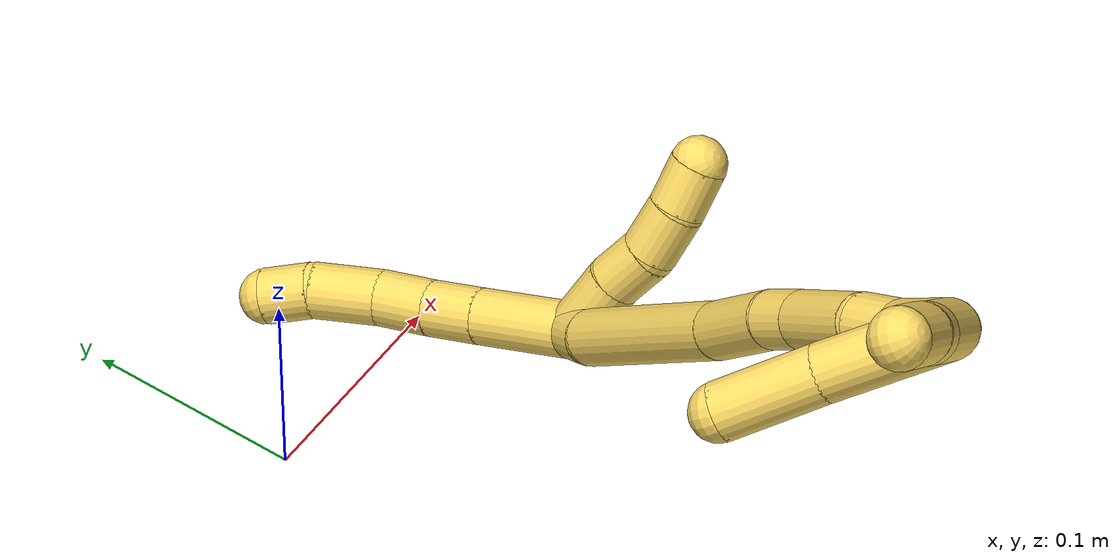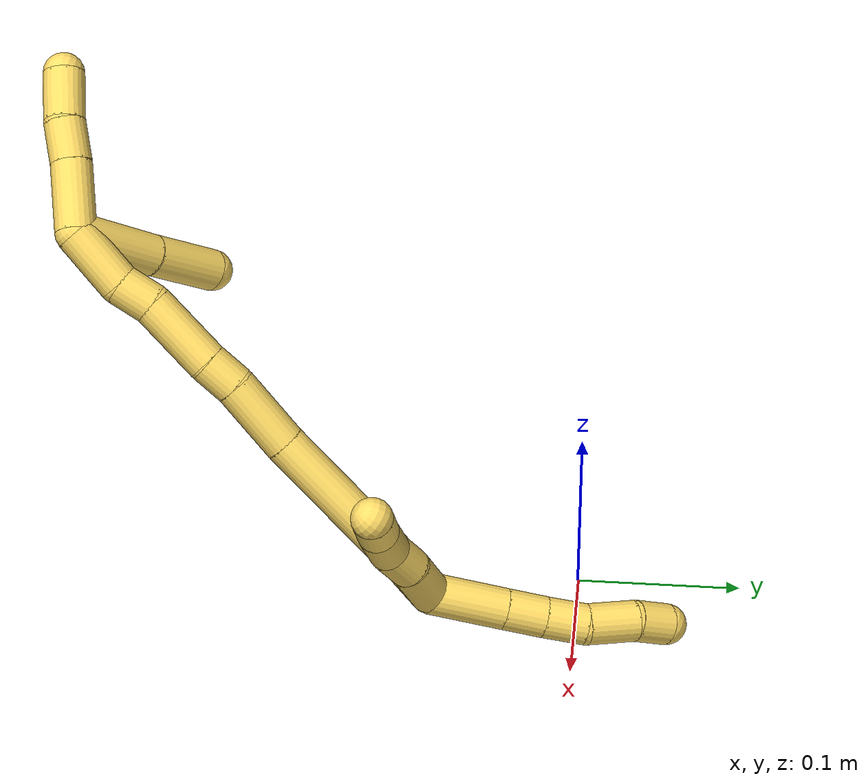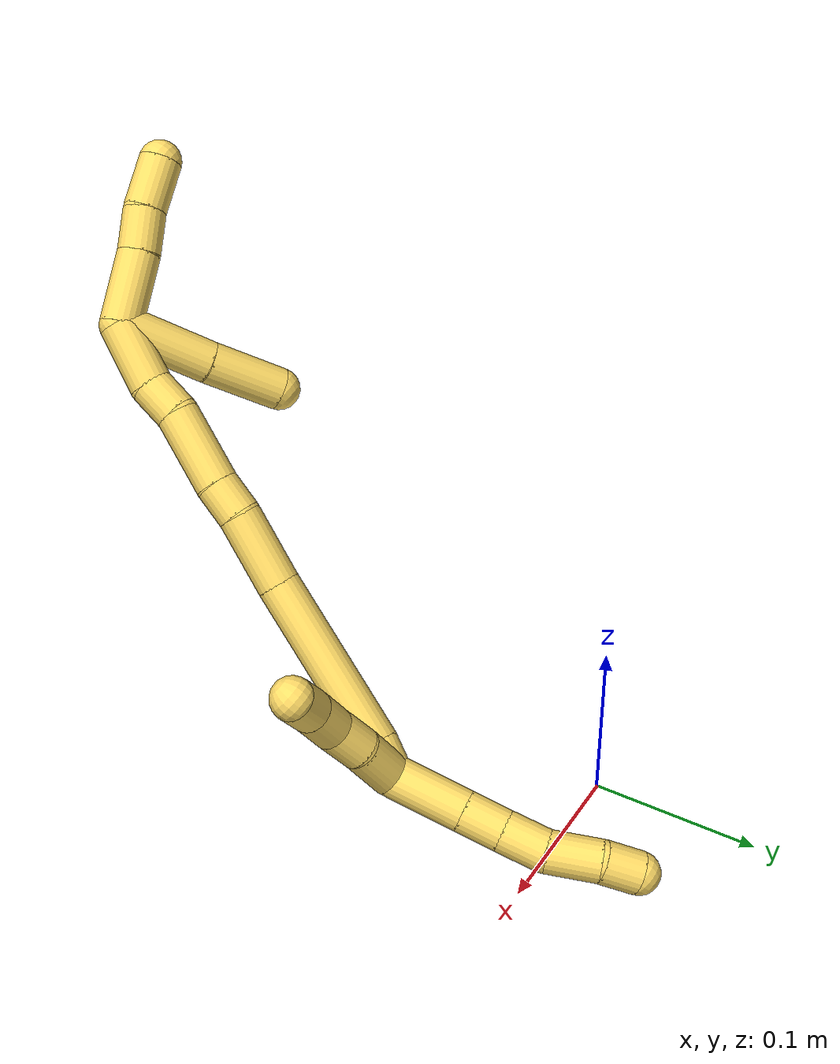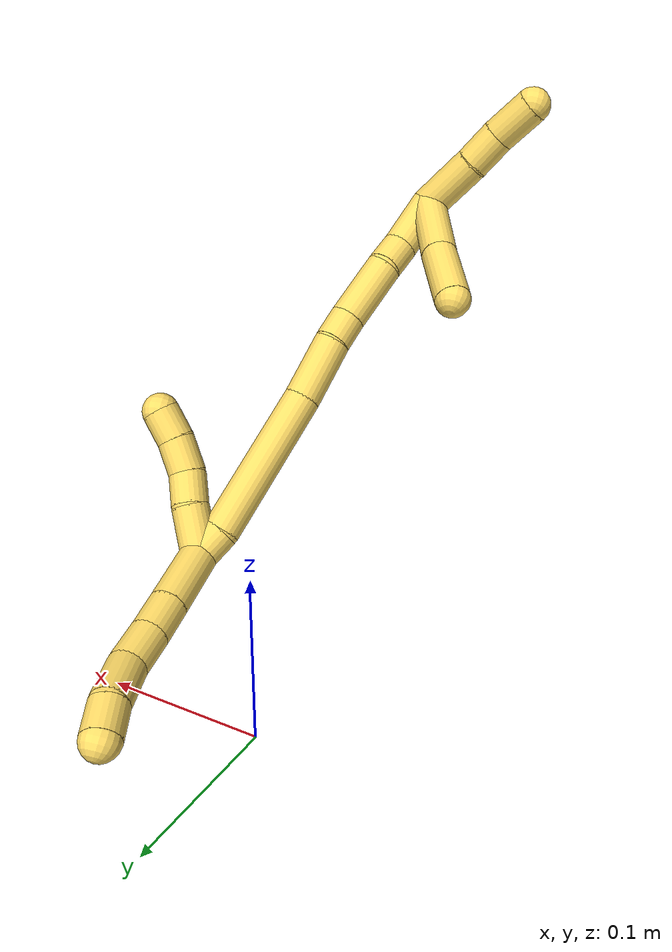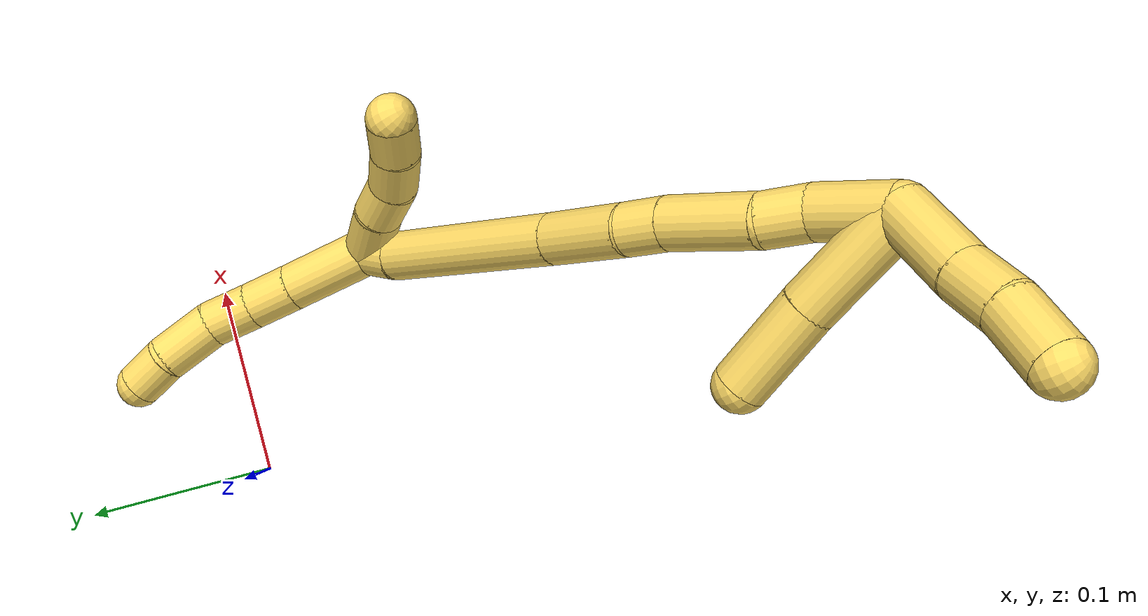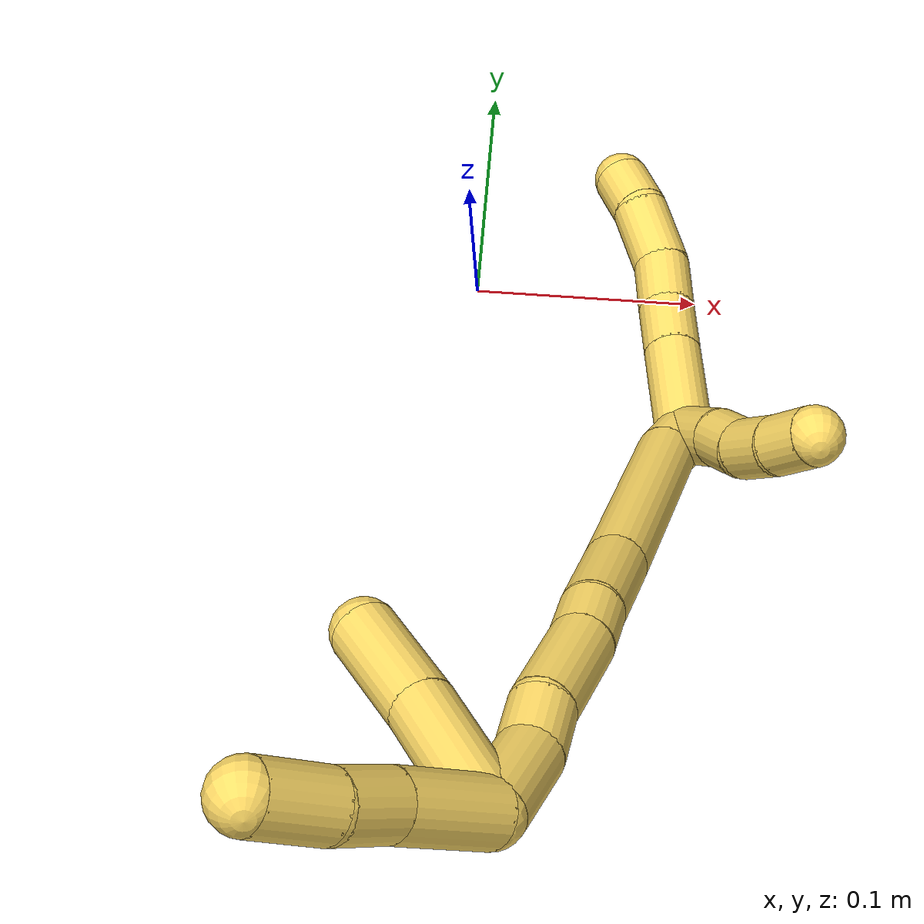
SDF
<sdf version="1.7">
 <world name="default">
  <model name="5">
   <static>0</static>
   <link name="5">
    <collision name="collision-cylinder-e_1_2_8">
     <pose>-0.008935 0.001822 -0.021013 -3.0551 -0.40069 2.72169</pose>
     <geometry><cylinder><radius>0.0125</radius><length>0.045813</length></cylinder></geometry>
     <surface>
      <friction><ode><mu>1.16</mu><mu2>1.16</mu2><slip1>0</slip1><slip2>0</slip2></ode></friction>
      <contact><ode><kp>1e+06</kp><kd>1</kd><max_vel>0</max_vel><min_depth>0.001</min_depth></ode></contact>
     </surface>
    </collision>
    <visual name="visual-cylinder-e_1_2_8">
     <pose>-0.008935 0.001822 -0.021013 -3.0551 -0.40069 2.72169</pose>
     <geometry><cylinder><radius>0.0125</radius><length>0.045813</length></cylinder></geometry>
     <material><ambient>1 0.858824 0.4 1</ambient></material>
    </visual>
    <collision name="collision-cylinder-e_2_8_9">
     <pose>-0.022792 0.004714 -0.053364 -3.04746 -0.407995 2.69385</pose>
     <geometry><cylinder><radius>0.0125</radius><length>0.024813</length></cylinder></geometry>
     <surface>
      <friction><ode><mu>1.16</mu><mu2>1.16</mu2><slip1>0</slip1><slip2>0</slip2></ode></friction>
      <contact><ode><kp>1e+06</kp><kd>1</kd><max_vel>0</max_vel><min_depth>0.001</min_depth></ode></contact>
     </surface>
    </collision>
    <visual name="visual-cylinder-e_2_8_9">
     <pose>-0.022792 0.004714 -0.053364 -3.04746 -0.407995 2.69385</pose>
     <geometry><cylinder><radius>0.0125</radius><length>0.024813</length></cylinder></geometry>
     <material><ambient>1 0.858824 0.4 1</ambient></material>
    </visual>
    <collision name="collision-cylinder-e_3_9_10">
     <pose>-0.033276 0.007093 -0.076266 -3.02897 -0.445794 2.65408</pose>
     <geometry><cylinder><radius>0.0125</radius><length>0.025797</length></cylinder></geometry>
     <surface>
      <friction><ode><mu>1.16</mu><mu2>1.16</mu2><slip1>0</slip1><slip2>0</slip2></ode></friction>
      <contact><ode><kp>1e+06</kp><kd>1</kd><max_vel>0</max_vel><min_depth>0.001</min_depth></ode></contact>
     </surface>
    </collision>
    <visual name="visual-cylinder-e_3_9_10">
     <pose>-0.033276 0.007093 -0.076266 -3.02897 -0.445794 2.65408</pose>
     <geometry><cylinder><radius>0.0125</radius><length>0.025797</length></cylinder></geometry>
     <material><ambient>1 0.858824 0.4 1</ambient></material>
    </visual>
    <collision name="collision-cylinder-e_4_10_11">
     <pose>-0.047554 0.006474 -0.100657 2.99248 -0.591696 -2.66092</pose>
     <geometry><cylinder><radius>0.0125</radius><length>0.031254</length></cylinder></geometry>
     <surface>
      <friction><ode><mu>1.16</mu><mu2>1.16</mu2><slip1>0</slip1><slip2>0</slip2></ode></friction>
      <contact><ode><kp>1e+06</kp><kd>1</kd><max_vel>0</max_vel><min_depth>0.001</min_depth></ode></contact>
     </surface>
    </collision>
    <visual name="visual-cylinder-e_4_10_11">
     <pose>-0.047554 0.006474 -0.100657 2.99248 -0.591696 -2.66092</pose>
     <geometry><cylinder><radius>0.0125</radius><length>0.031254</length></cylinder></geometry>
     <material><ambient>1 0.858824 0.4 1</ambient></material>
    </visual>
    <collision name="collision-cylinder-e_5_11_6">
     <pose>-0.059989 0.0022 -0.123742 2.91667 -0.339714 -1.97694</pose>
     <geometry><cylinder><radius>0.0125</radius><length>0.022323</length></cylinder></geometry>
     <surface>
      <friction><ode><mu>1.16</mu><mu2>1.16</mu2><slip1>0</slip1><slip2>0</slip2></ode></friction>
      <contact><ode><kp>1e+06</kp><kd>1</kd><max_vel>0</max_vel><min_depth>0.001</min_depth></ode></contact>
     </surface>
    </collision>
    <visual name="visual-cylinder-e_5_11_6">
     <pose>-0.059989 0.0022 -0.123742 2.91667 -0.339714 -1.97694</pose>
     <geometry><cylinder><radius>0.0125</radius><length>0.022323</length></cylinder></geometry>
     <material><ambient>1 0.858824 0.4 1</ambient></material>
    </visual>
    <collision name="collision-cylinder-e_1_2_12">
     <pose>-0.005388 0.006122 0.013663 -0.421243 -0.345435 0.07456</pose>
     <geometry><cylinder><radius>0.0125</radius><length>0.031823</length></cylinder></geometry>
     <surface>
      <friction><ode><mu>1.16</mu><mu2>1.16</mu2><slip1>0</slip1><slip2>0</slip2></ode></friction>
      <contact><ode><kp>1e+06</kp><kd>1</kd><max_vel>0</max_vel><min_depth>0.001</min_depth></ode></contact>
     </surface>
    </collision>
    <visual name="visual-cylinder-e_1_2_12">
     <pose>-0.005388 0.006122 0.013663 -0.421243 -0.345435 0.07456</pose>
     <geometry><cylinder><radius>0.0125</radius><length>0.031823</length></cylinder></geometry>
     <material><ambient>1 0.858824 0.4 1</ambient></material>
    </visual>
    <collision name="collision-cylinder-e_2_12_13">
     <pose>-0.013043 0.015798 0.037687 -0.330446 -0.204128 0.034152</pose>
     <geometry><cylinder><radius>0.0125</radius><length>0.022373</length></cylinder></geometry>
     <surface>
      <friction><ode><mu>1.16</mu><mu2>1.16</mu2><slip1>0</slip1><slip2>0</slip2></ode></friction>
      <contact><ode><kp>1e+06</kp><kd>1</kd><max_vel>0</max_vel><min_depth>0.001</min_depth></ode></contact>
     </surface>
    </collision>
    <visual name="visual-cylinder-e_2_12_13">
     <pose>-0.013043 0.015798 0.037687 -0.330446 -0.204128 0.034152</pose>
     <geometry><cylinder><radius>0.0125</radius><length>0.022373</length></cylinder></geometry>
     <material><ambient>1 0.858824 0.4 1</ambient></material>
    </visual>
    <collision name="collision-cylinder-e_3_13_14">
     <pose>-0.020132 0.025098 0.057405 -0.55074 -0.413723 0.118455</pose>
     <geometry><cylinder><radius>0.0125</radius><length>0.023984</length></cylinder></geometry>
     <surface>
      <friction><ode><mu>1.16</mu><mu2>1.16</mu2><slip1>0</slip1><slip2>0</slip2></ode></friction>
      <contact><ode><kp>1e+06</kp><kd>1</kd><max_vel>0</max_vel><min_depth>0.001</min_depth></ode></contact>
     </surface>
    </collision>
    <visual name="visual-cylinder-e_3_13_14">
     <pose>-0.020132 0.025098 0.057405 -0.55074 -0.413723 0.118455</pose>
     <geometry><cylinder><radius>0.0125</radius><length>0.023984</length></cylinder></geometry>
     <material><ambient>1 0.858824 0.4 1</ambient></material>
    </visual>
    <collision name="collision-cylinder-e_4_14_5">
     <pose>-0.029768 0.037284 0.074136 -0.717866 -0.457115 0.174112</pose>
     <geometry><cylinder><radius>0.0125</radius><length>0.02182</length></cylinder></geometry>
     <surface>
      <friction><ode><mu>1.16</mu><mu2>1.16</mu2><slip1>0</slip1><slip2>0</slip2></ode></friction>
      <contact><ode><kp>1e+06</kp><kd>1</kd><max_vel>0</max_vel><min_depth>0.001</min_depth></ode></contact>
     </surface>
    </collision>
    <visual name="visual-cylinder-e_4_14_5">
     <pose>-0.029768 0.037284 0.074136 -0.717866 -0.457115 0.174112</pose>
     <geometry><cylinder><radius>0.0125</radius><length>0.02182</length></cylinder></geometry>
     <material><ambient>1 0.858824 0.4 1</ambient></material>
    </visual>
    <collision name="collision-cylinder-e_1_2_15">
     <pose>-0.001089 -0.00514 0.008529 0.542363 -0.108935 -0.030315</pose>
     <geometry><cylinder><radius>0.0125</radius><length>0.020035</length></cylinder></geometry>
     <surface>
      <friction><ode><mu>1.16</mu><mu2>1.16</mu2><slip1>0</slip1><slip2>0</slip2></ode></friction>
      <contact><ode><kp>1e+06</kp><kd>1</kd><max_vel>0</max_vel><min_depth>0.001</min_depth></ode></contact>
     </surface>
    </collision>
    <visual name="visual-cylinder-e_1_2_15">
     <pose>-0.001089 -0.00514 0.008529 0.542363 -0.108935 -0.030315</pose>
     <geometry><cylinder><radius>0.0125</radius><length>0.020035</length></cylinder></geometry>
     <material><ambient>1 0.858824 0.4 1</ambient></material>
    </visual>
    <collision name="collision-cylinder-e_2_15_16">
     <pose>-0.008703 -0.026763 0.066465 0.322005 -0.124631 -0.020267</pose>
     <geometry><cylinder><radius>0.0125</radius><length>0.104983</length></cylinder></geometry>
     <surface>
      <friction><ode><mu>1.16</mu><mu2>1.16</mu2><slip1>0</slip1><slip2>0</slip2></ode></friction>
      <contact><ode><kp>1e+06</kp><kd>1</kd><max_vel>0</max_vel><min_depth>0.001</min_depth></ode></contact>
     </surface>
    </collision>
    <visual name="visual-cylinder-e_2_15_16">
     <pose>-0.008703 -0.026763 0.066465 0.322005 -0.124631 -0.020267</pose>
     <geometry><cylinder><radius>0.0125</radius><length>0.104983</length></cylinder></geometry>
     <material><ambient>1 0.858824 0.4 1</ambient></material>
    </visual>
    <collision name="collision-cylinder-e_3_16_17">
     <pose>-0.019731 -0.049637 0.137038 0.293241 -0.200898 -0.029767</pose>
     <geometry><cylinder><radius>0.0125</radius><length>0.045126</length></cylinder></geometry>
     <surface>
      <friction><ode><mu>1.16</mu><mu2>1.16</mu2><slip1>0</slip1><slip2>0</slip2></ode></friction>
      <contact><ode><kp>1e+06</kp><kd>1</kd><max_vel>0</max_vel><min_depth>0.001</min_depth></ode></contact>
     </surface>
    </collision>
    <visual name="visual-cylinder-e_3_16_17">
     <pose>-0.019731 -0.049637 0.137038 0.293241 -0.200898 -0.029767</pose>
     <geometry><cylinder><radius>0.0125</radius><length>0.045126</length></cylinder></geometry>
     <material><ambient>1 0.858824 0.4 1</ambient></material>
    </visual>
    <collision name="collision-cylinder-e_4_17_18">
     <pose>-0.02468 -0.059251 0.168442 0.304991 -0.041596 -0.006394</pose>
     <geometry><cylinder><radius>0.0125</radius><length>0.021488</length></cylinder></geometry>
     <surface>
      <friction><ode><mu>1.16</mu><mu2>1.16</mu2><slip1>0</slip1><slip2>0</slip2></ode></friction>
      <contact><ode><kp>1e+06</kp><kd>1</kd><max_vel>0</max_vel><min_depth>0.001</min_depth></ode></contact>
     </surface>
    </collision>
    <visual name="visual-cylinder-e_4_17_18">
     <pose>-0.02468 -0.059251 0.168442 0.304991 -0.041596 -0.006394</pose>
     <geometry><cylinder><radius>0.0125</radius><length>0.021488</length></cylinder></geometry>
     <material><ambient>1 0.858824 0.4 1</ambient></material>
    </visual>
    <collision name="collision-cylinder-e_5_18_19">
     <pose>-0.027988 -0.071317 0.200039 0.392528 -0.123154 -0.024516</pose>
     <geometry><cylinder><radius>0.0125</radius><length>0.046584</length></cylinder></geometry>
     <surface>
      <friction><ode><mu>1.16</mu><mu2>1.16</mu2><slip1>0</slip1><slip2>0</slip2></ode></friction>
      <contact><ode><kp>1e+06</kp><kd>1</kd><max_vel>0</max_vel><min_depth>0.001</min_depth></ode></contact>
     </surface>
    </collision>
    <visual name="visual-cylinder-e_5_18_19">
     <pose>-0.027988 -0.071317 0.200039 0.392528 -0.123154 -0.024516</pose>
     <geometry><cylinder><radius>0.0125</radius><length>0.046584</length></cylinder></geometry>
     <material><ambient>1 0.858824 0.4 1</ambient></material>
    </visual>
    <collision name="collision-cylinder-e_6_19_20">
     <pose>-0.029548 -0.083726 0.23208 0.322278 0.115074 0.018725</pose>
     <geometry><cylinder><radius>0.0125</radius><length>0.022675</length></cylinder></geometry>
     <surface>
      <friction><ode><mu>1.16</mu><mu2>1.16</mu2><slip1>0</slip1><slip2>0</slip2></ode></friction>
      <contact><ode><kp>1e+06</kp><kd>1</kd><max_vel>0</max_vel><min_depth>0.001</min_depth></ode></contact>
     </surface>
    </collision>
    <visual name="visual-cylinder-e_6_19_20">
     <pose>-0.029548 -0.083726 0.23208 0.322278 0.115074 0.018725</pose>
     <geometry><cylinder><radius>0.0125</radius><length>0.022675</length></cylinder></geometry>
     <material><ambient>1 0.858824 0.4 1</ambient></material>
    </visual>
    <collision name="collision-cylinder-e_7_20_1">
     <pose>-0.031656 -0.094728 0.260524 0.396399 -0.175298 -0.035293</pose>
     <geometry><cylinder><radius>0.0125</radius><length>0.039109</length></cylinder></geometry>
     <surface>
      <friction><ode><mu>1.16</mu><mu2>1.16</mu2><slip1>0</slip1><slip2>0</slip2></ode></friction>
      <contact><ode><kp>1e+06</kp><kd>1</kd><max_vel>0</max_vel><min_depth>0.001</min_depth></ode></contact>
     </surface>
    </collision>
    <visual name="visual-cylinder-e_7_20_1">
     <pose>-0.031656 -0.094728 0.260524 0.396399 -0.175298 -0.035293</pose>
     <geometry><cylinder><radius>0.0125</radius><length>0.039109</length></cylinder></geometry>
     <material><ambient>1 0.858824 0.4 1</ambient></material>
    </visual>
    <collision name="collision-cylinder-e_1_1_21">
     <pose>-0.047684 -0.116739 0.288068 0.979759 -0.623172 -0.340166</pose>
     <geometry><cylinder><radius>0.0125</radius><length>0.043238</length></cylinder></geometry>
     <surface>
      <friction><ode><mu>1.16</mu><mu2>1.16</mu2><slip1>0</slip1><slip2>0</slip2></ode></friction>
      <contact><ode><kp>1e+06</kp><kd>1</kd><max_vel>0</max_vel><min_depth>0.001</min_depth></ode></contact>
     </surface>
    </collision>
    <visual name="visual-cylinder-e_1_1_21">
     <pose>-0.047684 -0.116739 0.288068 0.979759 -0.623172 -0.340166</pose>
     <geometry><cylinder><radius>0.0125</radius><length>0.043238</length></cylinder></geometry>
     <material><ambient>1 0.858824 0.4 1</ambient></material>
    </visual>
    <collision name="collision-cylinder-e_2_21_22">
     <pose>-0.06744 -0.139425 0.304893 0.855627 -0.586699 -0.273746</pose>
     <geometry><cylinder><radius>0.0125</radius><length>0.025793</length></cylinder></geometry>
     <surface>
      <friction><ode><mu>1.16</mu><mu2>1.16</mu2><slip1>0</slip1><slip2>0</slip2></ode></friction>
      <contact><ode><kp>1e+06</kp><kd>1</kd><max_vel>0</max_vel><min_depth>0.001</min_depth></ode></contact>
     </surface>
    </collision>
    <visual name="visual-cylinder-e_2_21_22">
     <pose>-0.06744 -0.139425 0.304893 0.855627 -0.586699 -0.273746</pose>
     <geometry><cylinder><radius>0.0125</radius><length>0.025793</length></cylinder></geometry>
     <material><ambient>1 0.858824 0.4 1</ambient></material>
    </visual>
    <collision name="collision-cylinder-e_3_22_4">
     <pose>-0.083817 -0.158314 0.318119 1.05006 -0.639174 -0.378794</pose>
     <geometry><cylinder><radius>0.0125</radius><length>0.03097</length></cylinder></geometry>
     <surface>
      <friction><ode><mu>1.16</mu><mu2>1.16</mu2><slip1>0</slip1><slip2>0</slip2></ode></friction>
      <contact><ode><kp>1e+06</kp><kd>1</kd><max_vel>0</max_vel><min_depth>0.001</min_depth></ode></contact>
     </surface>
    </collision>
    <visual name="visual-cylinder-e_3_22_4">
     <pose>-0.083817 -0.158314 0.318119 1.05006 -0.639174 -0.378794</pose>
     <geometry><cylinder><radius>0.0125</radius><length>0.03097</length></cylinder></geometry>
     <material><ambient>1 0.858824 0.4 1</ambient></material>
    </visual>
    <collision name="collision-cylinder-e_1_1_23">
     <pose>-0.039551 -0.110936 0.252685 2.81143 -0.16422 -0.917643</pose>
     <geometry><cylinder><radius>0.0125</radius><length>0.054864</length></cylinder></geometry>
     <surface>
      <friction><ode><mu>1.16</mu><mu2>1.16</mu2><slip1>0</slip1><slip2>0</slip2></ode></friction>
      <contact><ode><kp>1e+06</kp><kd>1</kd><max_vel>0</max_vel><min_depth>0.001</min_depth></ode></contact>
     </surface>
    </collision>
    <visual name="visual-cylinder-e_1_1_23">
     <pose>-0.039551 -0.110936 0.252685 2.81143 -0.16422 -0.917643</pose>
     <geometry><cylinder><radius>0.0125</radius><length>0.054864</length></cylinder></geometry>
     <material><ambient>1 0.858824 0.4 1</ambient></material>
    </visual>
    <collision name="collision-cylinder-e_2_23_3">
     <pose>-0.047857 -0.128025 0.206454 2.7584 -0.170155 -0.828444</pose>
     <geometry><cylinder><radius>0.0125</radius><length>0.045136</length></cylinder></geometry>
     <surface>
      <friction><ode><mu>1.16</mu><mu2>1.16</mu2><slip1>0</slip1><slip2>0</slip2></ode></friction>
      <contact><ode><kp>1e+06</kp><kd>1</kd><max_vel>0</max_vel><min_depth>0.001</min_depth></ode></contact>
     </surface>
    </collision>
    <visual name="visual-cylinder-e_2_23_3">
     <pose>-0.047857 -0.128025 0.206454 2.7584 -0.170155 -0.828444</pose>
     <geometry><cylinder><radius>0.0125</radius><length>0.045136</length></cylinder></geometry>
     <material><ambient>1 0.858824 0.4 1</ambient></material>
    </visual>
    <collision name="collision-sphere-3">
     <pose>-0.051679 -0.136341 0.185826 0 -0 0</pose>
     <geometry><sphere><radius>0.0125</radius></sphere></geometry>
     <surface>
      <friction><ode><mu>1.16</mu><mu2>1.16</mu2><slip1>0</slip1><slip2>0</slip2></ode></friction>
      <contact><ode><kp>1e+06</kp><kd>1</kd><max_vel>0</max_vel><min_depth>0.001</min_depth></ode></contact>
     </surface>
    </collision>
    <visual name="visual-sphere-3">
     <pose>-0.051679 -0.136341 0.185826 0 -0 0</pose>
     <geometry><sphere><radius>0.0125</radius></sphere></geometry>
     <material><ambient>1 0.858824 0.4 1</ambient></material>
    </visual>
    <collision name="collision-sphere-23">
     <pose>-0.044036 -0.119709 0.227083 0 -0 0</pose>
     <geometry><sphere><radius>0.0125</radius></sphere></geometry>
     <surface>
      <friction><ode><mu>1.16</mu><mu2>1.16</mu2><slip1>0</slip1><slip2>0</slip2></ode></friction>
      <contact><ode><kp>1e+06</kp><kd>1</kd><max_vel>0</max_vel><min_depth>0.001</min_depth></ode></contact>
     </surface>
    </collision>
    <visual name="visual-sphere-23">
     <pose>-0.044036 -0.119709 0.227083 0 -0 0</pose>
     <geometry><sphere><radius>0.0125</radius></sphere></geometry>
     <material><ambient>1 0.858824 0.4 1</ambient></material>
    </visual>
    <collision name="collision-sphere-4">
     <pose>-0.093054 -0.169094 0.324302 0 -0 0</pose>
     <geometry><sphere><radius>0.0125</radius></sphere></geometry>
     <surface>
      <friction><ode><mu>1.16</mu><mu2>1.16</mu2><slip1>0</slip1><slip2>0</slip2></ode></friction>
      <contact><ode><kp>1e+06</kp><kd>1</kd><max_vel>0</max_vel><min_depth>0.001</min_depth></ode></contact>
     </surface>
    </collision>
    <visual name="visual-sphere-4">
     <pose>-0.093054 -0.169094 0.324302 0 -0 0</pose>
     <geometry><sphere><radius>0.0125</radius></sphere></geometry>
     <material><ambient>1 0.858824 0.4 1</ambient></material>
    </visual>
    <collision name="collision-sphere-22">
     <pose>-0.07458 -0.147533 0.311936 0 -0 0</pose>
     <geometry><sphere><radius>0.0125</radius></sphere></geometry>
     <surface>
      <friction><ode><mu>1.16</mu><mu2>1.16</mu2><slip1>0</slip1><slip2>0</slip2></ode></friction>
      <contact><ode><kp>1e+06</kp><kd>1</kd><max_vel>0</max_vel><min_depth>0.001</min_depth></ode></contact>
     </surface>
    </collision>
    <visual name="visual-sphere-22">
     <pose>-0.07458 -0.147533 0.311936 0 -0 0</pose>
     <geometry><sphere><radius>0.0125</radius></sphere></geometry>
     <material><ambient>1 0.858824 0.4 1</ambient></material>
    </visual>
    <collision name="collision-sphere-21">
     <pose>-0.060301 -0.131317 0.297851 0 -0 0</pose>
     <geometry><sphere><radius>0.0125</radius></sphere></geometry>
     <surface>
      <friction><ode><mu>1.16</mu><mu2>1.16</mu2><slip1>0</slip1><slip2>0</slip2></ode></friction>
      <contact><ode><kp>1e+06</kp><kd>1</kd><max_vel>0</max_vel><min_depth>0.001</min_depth></ode></contact>
     </surface>
    </collision>
    <visual name="visual-sphere-21">
     <pose>-0.060301 -0.131317 0.297851 0 -0 0</pose>
     <geometry><sphere><radius>0.0125</radius></sphere></geometry>
     <material><ambient>1 0.858824 0.4 1</ambient></material>
    </visual>
    <collision name="collision-sphere-1">
     <pose>-0.035066 -0.102162 0.278286 0 -0 0</pose>
     <geometry><sphere><radius>0.0125</radius></sphere></geometry>
     <surface>
      <friction><ode><mu>1.16</mu><mu2>1.16</mu2><slip1>0</slip1><slip2>0</slip2></ode></friction>
      <contact><ode><kp>1e+06</kp><kd>1</kd><max_vel>0</max_vel><min_depth>0.001</min_depth></ode></contact>
     </surface>
    </collision>
    <visual name="visual-sphere-1">
     <pose>-0.035066 -0.102162 0.278286 0 -0 0</pose>
     <geometry><sphere><radius>0.0125</radius></sphere></geometry>
     <material><ambient>1 0.858824 0.4 1</ambient></material>
    </visual>
    <collision name="collision-sphere-6">
     <pose>-0.063709 -0.000147 -0.134 0 -0 0</pose>
     <geometry><sphere><radius>0.0125</radius></sphere></geometry>
     <surface>
      <friction><ode><mu>1.16</mu><mu2>1.16</mu2><slip1>0</slip1><slip2>0</slip2></ode></friction>
      <contact><ode><kp>1e+06</kp><kd>1</kd><max_vel>0</max_vel><min_depth>0.001</min_depth></ode></contact>
     </surface>
    </collision>
    <visual name="visual-sphere-6">
     <pose>-0.063709 -0.000147 -0.134 0 -0 0</pose>
     <geometry><sphere><radius>0.0125</radius></sphere></geometry>
     <material><ambient>1 0.858824 0.4 1</ambient></material>
    </visual>
    <collision name="collision-sphere-11">
     <pose>-0.05627 0.004547 -0.113483 0 -0 0</pose>
     <geometry><sphere><radius>0.0125</radius></sphere></geometry>
     <surface>
      <friction><ode><mu>1.16</mu><mu2>1.16</mu2><slip1>0</slip1><slip2>0</slip2></ode></friction>
      <contact><ode><kp>1e+06</kp><kd>1</kd><max_vel>0</max_vel><min_depth>0.001</min_depth></ode></contact>
     </surface>
    </collision>
    <visual name="visual-sphere-11">
     <pose>-0.05627 0.004547 -0.113483 0 -0 0</pose>
     <geometry><sphere><radius>0.0125</radius></sphere></geometry>
     <material><ambient>1 0.858824 0.4 1</ambient></material>
    </visual>
    <collision name="collision-sphere-10">
     <pose>-0.038837 0.008401 -0.08783 0 -0 0</pose>
     <geometry><sphere><radius>0.0125</radius></sphere></geometry>
     <surface>
      <friction><ode><mu>1.16</mu><mu2>1.16</mu2><slip1>0</slip1><slip2>0</slip2></ode></friction>
      <contact><ode><kp>1e+06</kp><kd>1</kd><max_vel>0</max_vel><min_depth>0.001</min_depth></ode></contact>
     </surface>
    </collision>
    <visual name="visual-sphere-10">
     <pose>-0.038837 0.008401 -0.08783 0 -0 0</pose>
     <geometry><sphere><radius>0.0125</radius></sphere></geometry>
     <material><ambient>1 0.858824 0.4 1</ambient></material>
    </visual>
    <collision name="collision-sphere-9">
     <pose>-0.027715 0.005785 -0.064702 0 -0 0</pose>
     <geometry><sphere><radius>0.0125</radius></sphere></geometry>
     <surface>
      <friction><ode><mu>1.16</mu><mu2>1.16</mu2><slip1>0</slip1><slip2>0</slip2></ode></friction>
      <contact><ode><kp>1e+06</kp><kd>1</kd><max_vel>0</max_vel><min_depth>0.001</min_depth></ode></contact>
     </surface>
    </collision>
    <visual name="visual-sphere-9">
     <pose>-0.027715 0.005785 -0.064702 0 -0 0</pose>
     <geometry><sphere><radius>0.0125</radius></sphere></geometry>
     <material><ambient>1 0.858824 0.4 1</ambient></material>
    </visual>
    <collision name="collision-sphere-2">
     <geometry><sphere><radius>0.0125</radius></sphere></geometry>
     <surface>
      <friction><ode><mu>1.16</mu><mu2>1.16</mu2><slip1>0</slip1><slip2>0</slip2></ode></friction>
      <contact><ode><kp>1e+06</kp><kd>1</kd><max_vel>0</max_vel><min_depth>0.001</min_depth></ode></contact>
     </surface>
    </collision>
    <visual name="visual-sphere-2">
     <geometry><sphere><radius>0.0125</radius></sphere></geometry>
     <material><ambient>1 0.858824 0.4 1</ambient></material>
    </visual>
    <collision name="collision-sphere-19">
     <pose>-0.030849 -0.080159 0.221397 0 -0 0</pose>
     <geometry><sphere><radius>0.0125</radius></sphere></geometry>
     <surface>
      <friction><ode><mu>1.16</mu><mu2>1.16</mu2><slip1>0</slip1><slip2>0</slip2></ode></friction>
      <contact><ode><kp>1e+06</kp><kd>1</kd><max_vel>0</max_vel><min_depth>0.001</min_depth></ode></contact>
     </surface>
    </collision>
    <visual name="visual-sphere-19">
     <pose>-0.030849 -0.080159 0.221397 0 -0 0</pose>
     <geometry><sphere><radius>0.0125</radius></sphere></geometry>
     <material><ambient>1 0.858824 0.4 1</ambient></material>
    </visual>
    <collision name="collision-sphere-8">
     <pose>-0.01787 0.003644 -0.042027 0 -0 0</pose>
     <geometry><sphere><radius>0.0125</radius></sphere></geometry>
     <surface>
      <friction><ode><mu>1.16</mu><mu2>1.16</mu2><slip1>0</slip1><slip2>0</slip2></ode></friction>
      <contact><ode><kp>1e+06</kp><kd>1</kd><max_vel>0</max_vel><min_depth>0.001</min_depth></ode></contact>
     </surface>
    </collision>
    <visual name="visual-sphere-8">
     <pose>-0.01787 0.003644 -0.042027 0 -0 0</pose>
     <geometry><sphere><radius>0.0125</radius></sphere></geometry>
     <material><ambient>1 0.858824 0.4 1</ambient></material>
    </visual>
    <collision name="collision-sphere-12">
     <pose>-0.010776 0.012244 0.027326 0 -0 0</pose>
     <geometry><sphere><radius>0.0125</radius></sphere></geometry>
     <surface>
      <friction><ode><mu>1.16</mu><mu2>1.16</mu2><slip1>0</slip1><slip2>0</slip2></ode></friction>
      <contact><ode><kp>1e+06</kp><kd>1</kd><max_vel>0</max_vel><min_depth>0.001</min_depth></ode></contact>
     </surface>
    </collision>
    <visual name="visual-sphere-12">
     <pose>-0.010776 0.012244 0.027326 0 -0 0</pose>
     <geometry><sphere><radius>0.0125</radius></sphere></geometry>
     <material><ambient>1 0.858824 0.4 1</ambient></material>
    </visual>
    <collision name="collision-sphere-13">
     <pose>-0.015311 0.019352 0.048049 0 -0 0</pose>
     <geometry><sphere><radius>0.0125</radius></sphere></geometry>
     <surface>
      <friction><ode><mu>1.16</mu><mu2>1.16</mu2><slip1>0</slip1><slip2>0</slip2></ode></friction>
      <contact><ode><kp>1e+06</kp><kd>1</kd><max_vel>0</max_vel><min_depth>0.001</min_depth></ode></contact>
     </surface>
    </collision>
    <visual name="visual-sphere-13">
     <pose>-0.015311 0.019352 0.048049 0 -0 0</pose>
     <geometry><sphere><radius>0.0125</radius></sphere></geometry>
     <material><ambient>1 0.858824 0.4 1</ambient></material>
    </visual>
    <collision name="collision-sphere-14">
     <pose>-0.024953 0.030845 0.066762 0 -0 0</pose>
     <geometry><sphere><radius>0.0125</radius></sphere></geometry>
     <surface>
      <friction><ode><mu>1.16</mu><mu2>1.16</mu2><slip1>0</slip1><slip2>0</slip2></ode></friction>
      <contact><ode><kp>1e+06</kp><kd>1</kd><max_vel>0</max_vel><min_depth>0.001</min_depth></ode></contact>
     </surface>
    </collision>
    <visual name="visual-sphere-14">
     <pose>-0.024953 0.030845 0.066762 0 -0 0</pose>
     <geometry><sphere><radius>0.0125</radius></sphere></geometry>
     <material><ambient>1 0.858824 0.4 1</ambient></material>
    </visual>
    <collision name="collision-sphere-5">
     <pose>-0.034583 0.043724 0.08151 0 -0 0</pose>
     <geometry><sphere><radius>0.0125</radius></sphere></geometry>
     <surface>
      <friction><ode><mu>1.16</mu><mu2>1.16</mu2><slip1>0</slip1><slip2>0</slip2></ode></friction>
      <contact><ode><kp>1e+06</kp><kd>1</kd><max_vel>0</max_vel><min_depth>0.001</min_depth></ode></contact>
     </surface>
    </collision>
    <visual name="visual-sphere-5">
     <pose>-0.034583 0.043724 0.08151 0 -0 0</pose>
     <geometry><sphere><radius>0.0125</radius></sphere></geometry>
     <material><ambient>1 0.858824 0.4 1</ambient></material>
    </visual>
    <collision name="collision-sphere-15">
     <pose>-0.002178 -0.01028 0.017058 0 -0 0</pose>
     <geometry><sphere><radius>0.0125</radius></sphere></geometry>
     <surface>
      <friction><ode><mu>1.16</mu><mu2>1.16</mu2><slip1>0</slip1><slip2>0</slip2></ode></friction>
      <contact><ode><kp>1e+06</kp><kd>1</kd><max_vel>0</max_vel><min_depth>0.001</min_depth></ode></contact>
     </surface>
    </collision>
    <visual name="visual-sphere-15">
     <pose>-0.002178 -0.01028 0.017058 0 -0 0</pose>
     <geometry><sphere><radius>0.0125</radius></sphere></geometry>
     <material><ambient>1 0.858824 0.4 1</ambient></material>
    </visual>
    <collision name="collision-sphere-16">
     <pose>-0.015228 -0.043246 0.115873 0 -0 0</pose>
     <geometry><sphere><radius>0.0125</radius></sphere></geometry>
     <surface>
      <friction><ode><mu>1.16</mu><mu2>1.16</mu2><slip1>0</slip1><slip2>0</slip2></ode></friction>
      <contact><ode><kp>1e+06</kp><kd>1</kd><max_vel>0</max_vel><min_depth>0.001</min_depth></ode></contact>
     </surface>
    </collision>
    <visual name="visual-sphere-16">
     <pose>-0.015228 -0.043246 0.115873 0 -0 0</pose>
     <geometry><sphere><radius>0.0125</radius></sphere></geometry>
     <material><ambient>1 0.858824 0.4 1</ambient></material>
    </visual>
    <collision name="collision-sphere-17">
     <pose>-0.024233 -0.056028 0.158203 0 -0 0</pose>
     <geometry><sphere><radius>0.0125</radius></sphere></geometry>
     <surface>
      <friction><ode><mu>1.16</mu><mu2>1.16</mu2><slip1>0</slip1><slip2>0</slip2></ode></friction>
      <contact><ode><kp>1e+06</kp><kd>1</kd><max_vel>0</max_vel><min_depth>0.001</min_depth></ode></contact>
     </surface>
    </collision>
    <visual name="visual-sphere-17">
     <pose>-0.024233 -0.056028 0.158203 0 -0 0</pose>
     <geometry><sphere><radius>0.0125</radius></sphere></geometry>
     <material><ambient>1 0.858824 0.4 1</ambient></material>
    </visual>
    <collision name="collision-sphere-18">
     <pose>-0.025127 -0.062475 0.178682 0 -0 0</pose>
     <geometry><sphere><radius>0.0125</radius></sphere></geometry>
     <surface>
      <friction><ode><mu>1.16</mu><mu2>1.16</mu2><slip1>0</slip1><slip2>0</slip2></ode></friction>
      <contact><ode><kp>1e+06</kp><kd>1</kd><max_vel>0</max_vel><min_depth>0.001</min_depth></ode></contact>
     </surface>
    </collision>
    <visual name="visual-sphere-18">
     <pose>-0.025127 -0.062475 0.178682 0 -0 0</pose>
     <geometry><sphere><radius>0.0125</radius></sphere></geometry>
     <material><ambient>1 0.858824 0.4 1</ambient></material>
    </visual>
    <collision name="collision-sphere-20">
     <pose>-0.028246 -0.087294 0.242763 0 -0 0</pose>
     <geometry><sphere><radius>0.0125</radius></sphere></geometry>
     <surface>
      <friction><ode><mu>1.16</mu><mu2>1.16</mu2><slip1>0</slip1><slip2>0</slip2></ode></friction>
      <contact><ode><kp>1e+06</kp><kd>1</kd><max_vel>0</max_vel><min_depth>0.001</min_depth></ode></contact>
     </surface>
    </collision>
    <visual name="visual-sphere-20">
     <pose>-0.028246 -0.087294 0.242763 0 -0 0</pose>
     <geometry><sphere><radius>0.0125</radius></sphere></geometry>
     <material><ambient>1 0.858824 0.4 1</ambient></material>
    </visual>
    <inertial>
     <pose>-0.030066 -0.050885 0.118914 0 -0 0</pose>
     <mass>0.75</mass>
     <inertia>
      <ixx>0.000112</ixx>
      <ixy>0</ixy>
      <ixz>0</ixz>
      <iyy>0.000112</iyy>
      <iyz>0</iyz>
      <izz>0.000112</izz>
     </inertia>
    </inertial>
   </link>
   <pose>0.097727 -0.084039 0.048423 0.069462 0.879356 -1.26234</pose>
  </model>
 </world>
</sdf>
